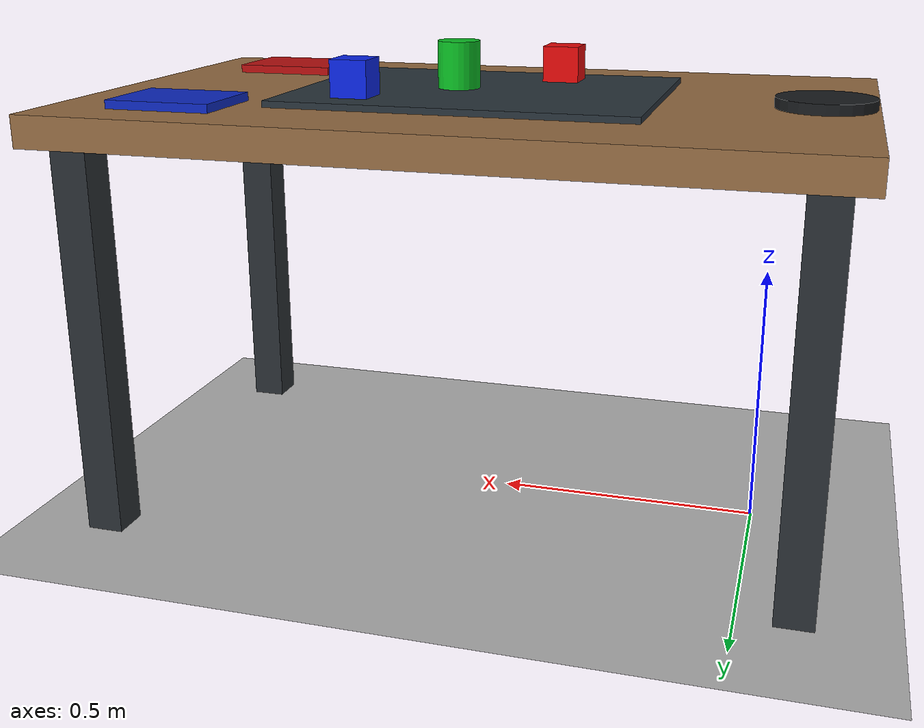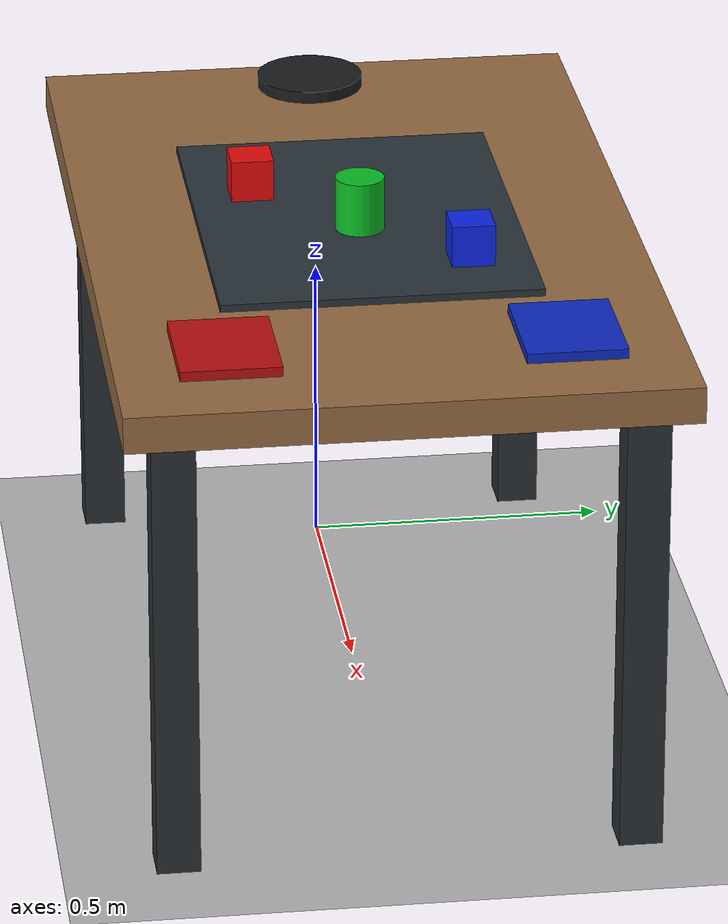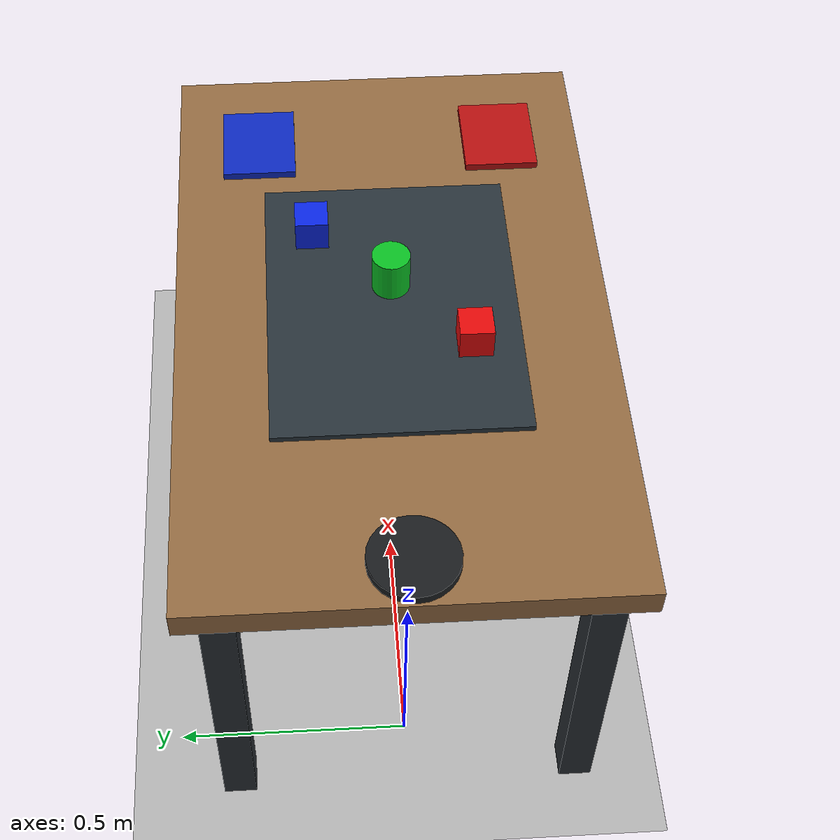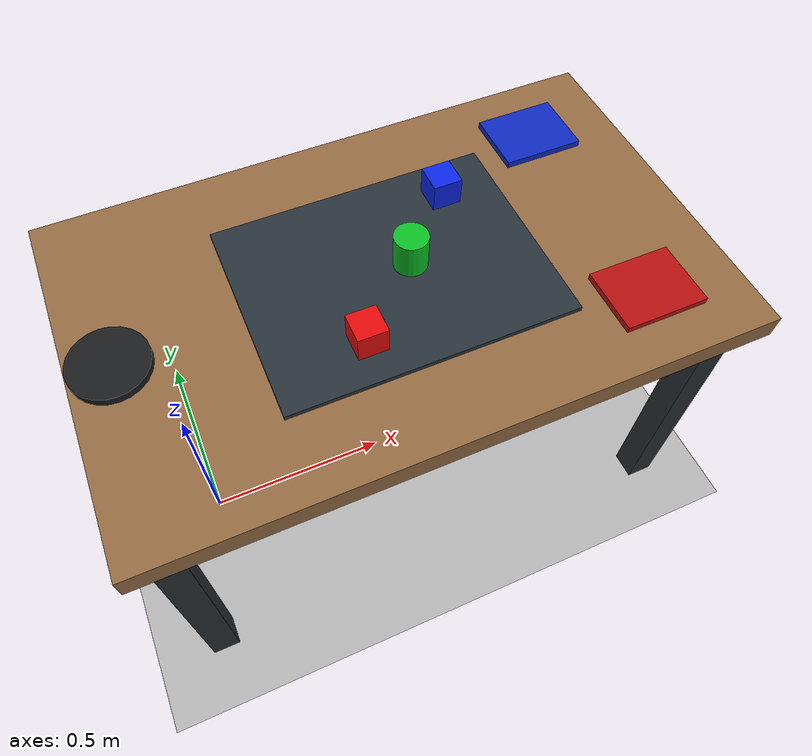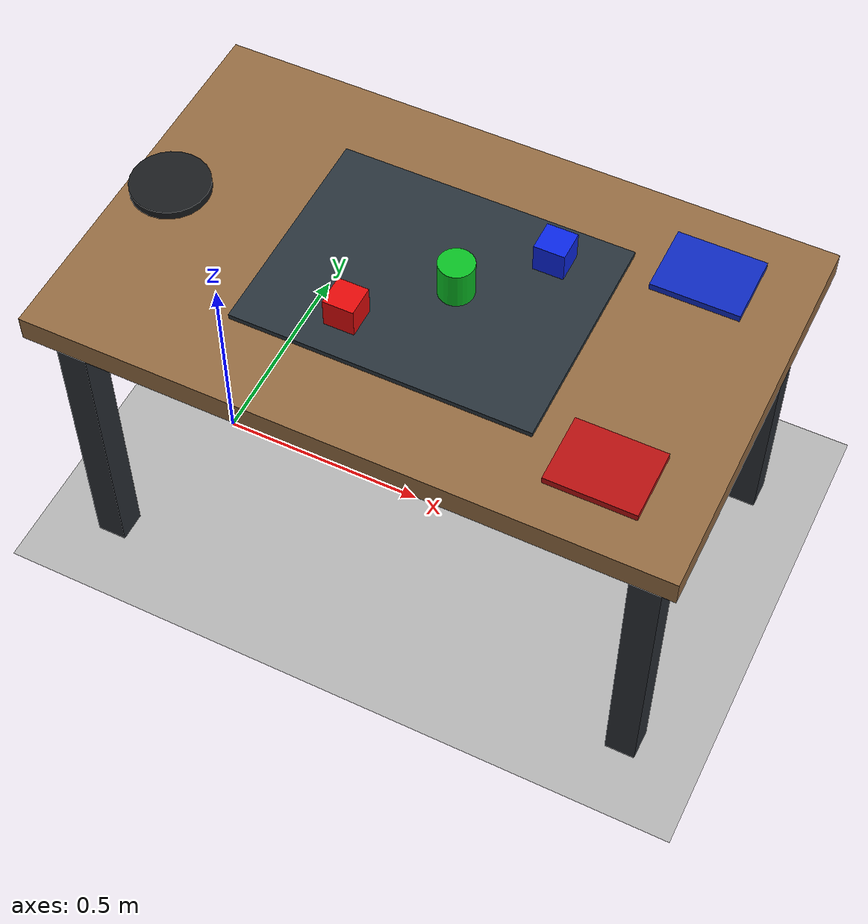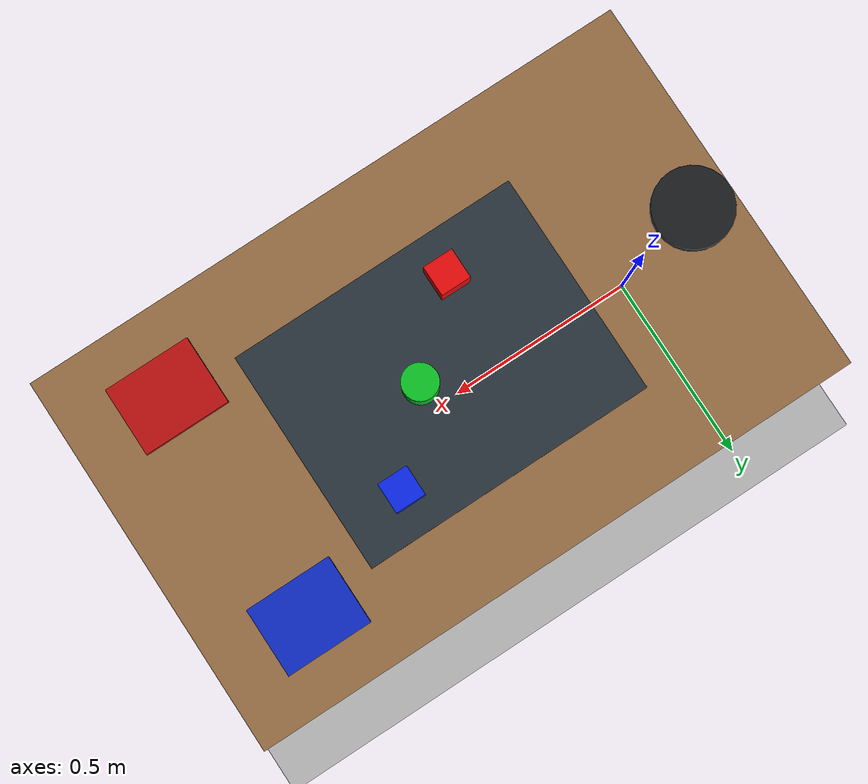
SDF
<?xml version="1.0" ?>
<sdf version="1.8">
  <world name="sorting_workcell">

    <physics name="default_physics" type="ignored">
      <max_step_size>0.001</max_step_size>
      <real_time_factor>1.0</real_time_factor>
    </physics>

    <plugin
      filename="libignition-gazebo-physics-system.so"
      name="ignition::gazebo::systems::Physics"/>

    <plugin
      filename="libignition-gazebo-user-commands-system.so"
      name="ignition::gazebo::systems::UserCommands"/>

    <plugin
      filename="libignition-gazebo-scene-broadcaster-system.so"
      name="ignition::gazebo::systems::SceneBroadcaster"/>

    <plugin
      filename="libignition-gazebo-contact-system.so"
      name="ignition::gazebo::systems::Contact"/>

    <!-- Required for the camera sensors supplied by the robot xacro variants. -->
    <plugin
      filename="libignition-gazebo-sensors-system.so"
      name="ignition::gazebo::systems::Sensors">
      <render_engine>ogre2</render_engine>
    </plugin>

    <gravity>0 0 -9.81</gravity>

    <scene>
      <ambient>0.55 0.55 0.55 1</ambient>
      <background>0.82 0.86 0.90 1</background>
      <shadows>true</shadows>
    </scene>

    <light type="directional" name="sun">
      <cast_shadows>true</cast_shadows>
      <pose>0 0 5 0 0 0</pose>
      <diffuse>0.9 0.9 0.9 1</diffuse>
      <specular>0.2 0.2 0.2 1</specular>
      <direction>-0.4 0.2 -0.9</direction>
    </light>

    <!-- 地面 -->
    <model name="ground_plane">
      <static>true</static>
      <link name="ground_link">
        <collision name="collision">
          <geometry>
            <plane>
              <normal>0 0 1</normal>
              <size>8 8</size>
            </plane>
          </geometry>
        </collision>

        <visual name="visual">
          <geometry>
            <plane>
              <normal>0 0 1</normal>
              <size>8 8</size>
            </plane>
          </geometry>
          <material>
            <ambient>0.70 0.70 0.70 1</ambient>
            <diffuse>0.70 0.70 0.70 1</diffuse>
          </material>
        </visual>
      </link>
    </model>

    <!-- 工作台，桌面上表面高度约为 0.81 m -->
    <model name="workbench">
      <static>true</static>
      <link name="workbench_link">

        <collision name="tabletop_collision">
          <pose>0.55 0 0.78 0 0 0</pose>
          <geometry>
            <box>
              <size>1.45 0.90 0.06</size>
            </box>
          </geometry>
        </collision>

        <visual name="tabletop_visual">
          <pose>0.55 0 0.78 0 0 0</pose>
          <geometry>
            <box>
              <size>1.45 0.90 0.06</size>
            </box>
          </geometry>
          <material>
            <ambient>0.58 0.42 0.26 1</ambient>
            <diffuse>0.58 0.42 0.26 1</diffuse>
          </material>
        </visual>

        <!-- 四条桌腿 -->
        <collision name="leg_1_collision">
          <pose>-0.10 -0.37 0.375 0 0 0</pose>
          <geometry>
            <box>
              <size>0.07 0.07 0.75</size>
            </box>
          </geometry>
        </collision>

        <visual name="leg_1_visual">
          <pose>-0.10 -0.37 0.375 0 0 0</pose>
          <geometry>
            <box>
              <size>0.07 0.07 0.75</size>
            </box>
          </geometry>
          <material>
            <ambient>0.16 0.18 0.20 1</ambient>
            <diffuse>0.16 0.18 0.20 1</diffuse>
          </material>
        </visual>

        <collision name="leg_2_collision">
          <pose>-0.10 0.37 0.375 0 0 0</pose>
          <geometry>
            <box>
              <size>0.07 0.07 0.75</size>
            </box>
          </geometry>
        </collision>

        <visual name="leg_2_visual">
          <pose>-0.10 0.37 0.375 0 0 0</pose>
          <geometry>
            <box>
              <size>0.07 0.07 0.75</size>
            </box>
          </geometry>
          <material>
            <ambient>0.16 0.18 0.20 1</ambient>
            <diffuse>0.16 0.18 0.20 1</diffuse>
          </material>
        </visual>

        <collision name="leg_3_collision">
          <pose>1.20 -0.37 0.375 0 0 0</pose>
          <geometry>
            <box>
              <size>0.07 0.07 0.75</size>
            </box>
          </geometry>
        </collision>

        <visual name="leg_3_visual">
          <pose>1.20 -0.37 0.375 0 0 0</pose>
          <geometry>
            <box>
              <size>0.07 0.07 0.75</size>
            </box>
          </geometry>
          <material>
            <ambient>0.16 0.18 0.20 1</ambient>
            <diffuse>0.16 0.18 0.20 1</diffuse>
          </material>
        </visual>

        <collision name="leg_4_collision">
          <pose>1.20 0.37 0.375 0 0 0</pose>
          <geometry>
            <box>
              <size>0.07 0.07 0.75</size>
            </box>
          </geometry>
        </collision>

        <visual name="leg_4_visual">
          <pose>1.20 0.37 0.375 0 0 0</pose>
          <geometry>
            <box>
              <size>0.07 0.07 0.75</size>
            </box>
          </geometry>
          <material>
            <ambient>0.16 0.18 0.20 1</ambient>
            <diffuse>0.16 0.18 0.20 1</diffuse>
          </material>
        </visual>
      </link>
    </model>

    <!-- 机械臂安装板 -->
    <model name="robot_mount">
      <static>true</static>
      <pose>-0.08 0 0.82 0 0 0</pose>

      <link name="mount_link">
        <collision name="collision">
          <geometry>
            <cylinder>
              <radius>0.09</radius>
              <length>0.02</length>
            </cylinder>
          </geometry>
        </collision>

        <visual name="visual">
          <geometry>
            <cylinder>
              <radius>0.09</radius>
              <length>0.02</length>
            </cylinder>
          </geometry>
          <material>
            <ambient>0.10 0.11 0.12 1</ambient>
            <diffuse>0.10 0.11 0.12 1</diffuse>
          </material>
        </visual>
      </link>
    </model>

    <!-- 中央操作区域 -->
    <model name="work_mat">
      <static>true</static>
      <pose>0.55 0 0.816 0 0 0</pose>

      <link name="mat_link">
        <collision name="collision">
          <geometry>
            <box>
              <size>0.68 0.52 0.012</size>
            </box>
          </geometry>
        </collision>

        <visual name="visual">
          <geometry>
            <box>
              <size>0.68 0.52 0.012</size>
            </box>
          </geometry>
          <material>
            <ambient>0.16 0.20 0.23 1</ambient>
            <diffuse>0.16 0.20 0.23 1</diffuse>
          </material>
        </visual>
      </link>
    </model>

    <!-- 红色目标区域 -->
    <model name="red_target_zone">
      <static>true</static>
      <pose>1.05 -0.27 0.818 0 0 0</pose>

      <link name="zone_link">
        <visual name="visual">
          <geometry>
            <box>
              <size>0.20 0.16 0.016</size>
            </box>
          </geometry>
          <material>
            <ambient>0.72 0.06 0.06 1</ambient>
            <diffuse>0.72 0.06 0.06 1</diffuse>
          </material>
        </visual>
      </link>
    </model>

    <!-- 蓝色目标区域 -->
    <model name="blue_target_zone">
      <static>true</static>
      <pose>1.05 0.27 0.818 0 0 0</pose>

      <link name="zone_link">
        <visual name="visual">
          <geometry>
            <box>
              <size>0.20 0.16 0.016</size>
            </box>
          </geometry>
          <material>
            <ambient>0.05 0.16 0.75 1</ambient>
            <diffuse>0.05 0.16 0.75 1</diffuse>
          </material>
        </visual>
      </link>
    </model>

    <!-- 红色方块 -->
    <model name="red_cube">
      <pose>0.43 -0.16 0.856 0 0 0</pose>

      <link name="cube_link">
        <inertial>
          <mass>0.08</mass>
          <inertia>
            <ixx>0.000065</ixx>
            <iyy>0.000065</iyy>
            <izz>0.000065</izz>
          </inertia>
        </inertial>

        <collision name="collision">
          <geometry>
            <box>
              <size>0.07 0.07 0.07</size>
            </box>
          </geometry>
        </collision>

        <visual name="visual">
          <geometry>
            <box>
              <size>0.07 0.07 0.07</size>
            </box>
          </geometry>
          <material>
            <ambient>0.90 0.04 0.04 1</ambient>
            <diffuse>0.90 0.04 0.04 1</diffuse>
          </material>
        </visual>
      </link>
    </model>

    <!-- 绿色圆柱 -->
    <model name="green_cylinder">
      <pose>0.60 0 0.866 0 0 0</pose>

      <link name="cylinder_link">
        <inertial>
          <mass>0.08</mass>
          <inertia>
            <ixx>0.000065</ixx>
            <iyy>0.000065</iyy>
            <izz>0.000065</izz>
          </inertia>
        </inertial>

        <collision name="collision">
          <geometry>
            <cylinder>
              <radius>0.04</radius>
              <length>0.09</length>
            </cylinder>
          </geometry>
        </collision>

        <visual name="visual">
          <geometry>
            <cylinder>
              <radius>0.04</radius>
              <length>0.09</length>
            </cylinder>
          </geometry>
          <material>
            <ambient>0.04 0.75 0.14 1</ambient>
            <diffuse>0.04 0.75 0.14 1</diffuse>
          </material>
        </visual>
      </link>
    </model>

    <!-- 蓝色方块 -->
    <model name="blue_cube">
      <pose>0.75 0.16 0.856 0 0 0</pose>

      <link name="cube_link">
        <inertial>
          <mass>0.08</mass>
          <inertia>
            <ixx>0.000065</ixx>
            <iyy>0.000065</iyy>
            <izz>0.000065</izz>
          </inertia>
        </inertial>

        <collision name="collision">
          <geometry>
            <box>
              <size>0.07 0.07 0.07</size>
            </box>
          </geometry>
        </collision>

        <visual name="visual">
          <geometry>
            <box>
              <size>0.07 0.07 0.07</size>
            </box>
          </geometry>
          <material>
            <ambient>0.04 0.15 0.90 1</ambient>
            <diffuse>0.04 0.15 0.90 1</diffuse>
          </material>
        </visual>
      </link>
    </model>

  </world>
</sdf>
